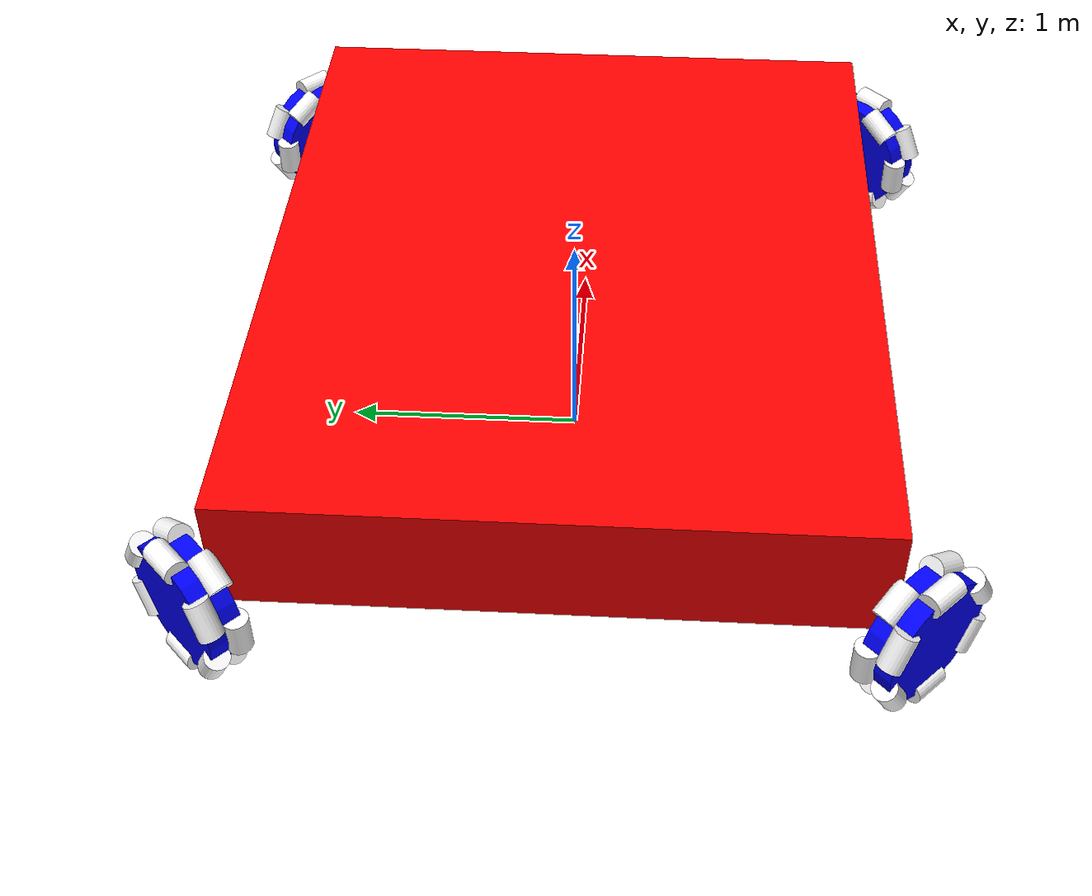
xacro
<?xml version="1.0"?>
<robot name="simple_robot" xmlns:xacro="http://www.ros.org/wiki/xacro">

        <xacro:include filename="$(find car_square)/model/gazebo.xacro"/>

        <xacro:include filename="$(find car_square)/model/wheels/omni_wheel.urdf.xacro"/>

        <link name="base_link">
                <visual>
                        <geometry>
                        <box size="${chassis_length} ${chassis_width} ${chassis_height}"/>
                        </geometry>
                        <origin xyz="0 0 ${chassis_offset}" rpy="0 0 0"/>
                        <material name="red"/>
                </visual>

                <collision>
                        <geometry>
                        <box size="0.3 0.25 0.05"/>
                        </geometry>
                        <origin xyz="0 0 ${chassis_offset}" rpy="0 0 0"/>
                </collision>

                <xacro:chassis_inertia />
        </link>

        <!-- LINKS ET JOINTS DES ROUES -->

        <xacro:omni_wheel
                prefix="lf"
                parent="base_link"
                xyz="${chassis_length/2} ${chassis_width/2 + wheel_width} ${r}"
                rpy="0 0 ${-pi/4}"
        />
        <xacro:omni_wheel
                prefix="rf"
                parent="base_link"
                xyz="${chassis_length/2} ${-(chassis_width/2 + wheel_width)} ${r}"
                rpy="0 0 ${5*pi/4}"
        />
        <xacro:omni_wheel
                prefix="lb"
                parent="base_link"
                xyz="${-(chassis_length/2)} ${chassis_width/2 + wheel_width} ${r}"
                rpy="0 0 ${pi/4}"
        />
        <xacro:omni_wheel
                prefix="rb"
                parent="base_link"
                xyz="${-(chassis_length/2)} ${-(chassis_width/2 + wheel_width)} ${r}"
                rpy="0 0 ${-5*pi/4}"
        />

        <!-- ROS2_CONTROL -->

        <ros2_control name="RobotController" type="system">
                <hardware>
                        <plugin>gz_ros2_control/GazeboSimSystem</plugin>
                </hardware>

                <joint name="lf_joint">
                        <command_interface name="velocity"/>
                        <state_interface name="position"/>
                        <state_interface name="velocity"/>
                        <state_interface name="effort"/>
                </joint>

                <joint name="rf_joint">
                        <command_interface name="velocity"/>
                        <state_interface name="position"/>
                        <state_interface name="velocity"/>
                        <state_interface name="effort"/>
                </joint>

                <joint name="lb_joint">
                        <command_interface name="velocity"/>
                        <state_interface name="position"/>
                        <state_interface name="velocity"/>
                        <state_interface name="effort"/>
                </joint>

                <joint name="rb_joint">
                        <command_interface name="velocity"/>
                        <state_interface name="position"/>
                        <state_interface name="velocity"/>
                        <state_interface name="effort"/>
                </joint>

        </ros2_control>

</robot>

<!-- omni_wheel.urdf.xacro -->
<robot xmlns:xacro="http://www.ros.org/wiki/xacro">

  <xacro:include filename="$(find ros2_control_car)/model/parameters.xacro"/>
  <!-- ========== MACRO ROLLER ========== -->
  <xacro:macro name="roller" params="prefix parent idx angle1 angle2 wheel_radius wheel_width roller_radius roller_length">

    <link name="${prefix}_roller_${idx}">
      <inertial>
        <origin xyz="0 0 0"/>
        <mass value="0.02"/>
        <inertia
          ixx="0.00001" iyy="0.00001" izz="0.00001"
          ixy="0" ixz="0" iyz="0"/>
      </inertial>

      <collision>
        <origin rpy="1.5708 0 0"/>
        <geometry>
          <cylinder radius="${roller_radius}" length="${roller_length}"/>
        </geometry>
      </collision>

      <visual>
        <origin rpy="1.5708 0 0"/>
        <geometry>
          <cylinder radius="${roller_radius}" length="${roller_length}"/>
        </geometry>
        <material name="white" />
      </visual>
    </link>

    <link name="${prefix}_roller_neighbor_${idx}">
      <inertial>
        <origin xyz="0 0 0"/>
        <mass value="0.02"/>
        <inertia
          ixx="0.00001" iyy="0.00001" izz="0.00001"
          ixy="0" ixz="0" iyz="0"/>
      </inertial>

      <collision>
        <origin rpy="1.5708 0 0"/>
        <geometry>
          <cylinder radius="${roller_radius}" length="${roller_length}"/>
        </geometry>
      </collision>

      <visual>
        <origin rpy="1.5708 0 0"/>
        <geometry>
          <cylinder radius="${roller_radius}" length="${roller_length}"/>
        </geometry>
        <material name="white" />
      </visual>
    </link>

    <joint name="${prefix}_roller_${idx}_joint" type="continuous">
      <parent link="${parent}"/>
      <child link="${prefix}_roller_${idx}"/>
      <origin
        xyz="${(wheel_radius - roller_radius) * cos(angle1)} ${-wheel_width/2} ${(wheel_radius - roller_radius) * sin(angle1)}"
        rpy="${3*pi/2 - angle1} 0 1.5708"/>
      <axis xyz="0 1 0"/>
    </joint>

    <joint name="${prefix}_roller_neighbor_${idx}_joint" type="continuous">
      <parent link="${parent}"/>
      <child link="${prefix}_roller_neighbor_${idx}"/>
      <origin
        xyz="${(wheel_radius - roller_radius) * cos(angle2)} ${2*roller_radius - wheel_width/2} ${(wheel_radius - roller_radius) * sin(angle2)}"
        rpy="${3*pi/2 - angle2} 0 1.5708"/>
      <axis xyz="0 1 0"/>
    </joint>

  </xacro:macro>

  <!-- ========== RÉCURSION ========== -->
  <xacro:macro name="roller_loop"
               params="prefix parent idx count wheel_radius wheel_width roller_radius roller_length">

    <xacro:if value="${idx &lt; count}">
      <xacro:property name="angle1"
                      value="${2 * pi * idx / count}"/>
      <xacro:property name="angle2"
                      value="${2 * pi * idx / count + pi / count}" />

      <xacro:roller
        prefix="${prefix}"
        parent="${parent}"
        idx="${idx}"
        angle1="${angle1}"
        angle2="${angle2}"
        wheel_radius="${wheel_radius}"
        wheel_width="${wheel_width}"
        roller_radius="${roller_radius}"
        roller_length="${roller_length}"/>

      <!-- appel récursif -->
      <xacro:roller_loop
        prefix="${prefix}"
        parent="${parent}"
        idx="${idx + 1}"
        count="${count}"
        wheel_radius="${wheel_radius}"
        wheel_width="${wheel_width}"
        roller_radius="${roller_radius}"
        roller_length="${roller_length}"/>
    </xacro:if>

  </xacro:macro>

  <!-- ========== OMNI WHEEL COMPLETE ========== -->
  <xacro:macro name="omni_wheel"
               params="prefix parent xyz rpy">

    <!-- moyeu -->
    <link name="${prefix}_hub">
      <inertial>
        <origin xyz="0 0 0"/>
        <mass value="0.5"/>
        <inertia
          ixx="0.001" iyy="0.001" izz="0.001"
          ixy="0.0" ixz="0.0" iyz="0.0"/>
      </inertial>

      <visual>
        <geometry>
          <cylinder radius="${7*wheel_radius/8}" length="${3*wheel_width/2}"/>
        </geometry>
        <material name="blue"/>
        <origin rpy="1.5708 0 0"/>
      </visual>

      <collision>
        <geometry>
          <cylinder radius="${7*wheel_radius/8}" length="${3*wheel_width/2}"/>
        </geometry>
        <material name="blue"/>
        <origin rpy="1.5708 0 0"/>
      </collision>
    </link>

    <joint name="${prefix}_joint" type="continuous">
      <parent link="${parent}"/>
      <child link="${prefix}_hub"/>
      <origin xyz="${xyz}" rpy="${rpy}"/>
      <axis xyz="0 1 0"/>
    </joint>

    <!-- génération des rollers -->
    <xacro:roller_loop
      prefix="${prefix}"
      parent="${prefix}_hub"
      idx="0"
      count="${roller_count}"
      wheel_radius="${wheel_radius}"
      wheel_width="${wheel_width}"
      roller_radius="${roller_radius}"
      roller_length="${roller_length}"/>

  </xacro:macro>

</robot>

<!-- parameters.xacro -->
<robot xmlns:xacro="http://www.ros.org/wiki/xacro">

<xacro:property name="SCALE_FACTOR" value="5" />

<xacro:property name="chassis_length" value="${0.6*SCALE_FACTOR}" />
<xacro:property name="chassis_width" value="${0.5*SCALE_FACTOR}" />
<xacro:property name="chassis_height" value="${0.1*SCALE_FACTOR}" />
<xacro:property name="chassis_offset" value="${0.15*SCALE_FACTOR}" />

<xacro:property name="chassis_density" value="271.0"/>
<xacro:property name="chassis_mass" value="${chassis_density * (chassis_length * chassis_width * chassis_height)}"/>

<xacro:property name="Ix_chassis" value="${(1/12)*chassis_mass*(chassis_width*chassis_width+chassis_height*chassis_height)}" />
<xacro:property name="Iy_chassis" value="${(1/12)*chassis_mass*(chassis_length*chassis_length+chassis_width*chassis_width)}" />
<xacro:property name="Iz_chassis" value="${(1/12)*chassis_mass*(chassis_length*chassis_length+chassis_height*chassis_height)}" />

<xacro:macro name="chassis_inertia">
        <inertial>
                <origin xyz="0 0 ${chassis_offset}" rpy="0 0 0"/>
                <mass value="${chassis_mass}"/>
                <inertia ixx="${Ix_chassis}" ixy="0.0" ixz="0.0" iyy="${Iy_chassis}" iyz="0" izz="${Iz_chassis}" />
        </inertial>
</xacro:macro>

<xacro:property name="r" value="${0.1*SCALE_FACTOR}" />
<xacro:property name="wheel_radius" value="${0.06*SCALE_FACTOR}"/>
<xacro:property name="wheel_width" value="${0.02*SCALE_FACTOR}"/>

<xacro:property name="roller_radius" value="${0.01*SCALE_FACTOR}"/>
<xacro:property name="roller_length" value="${0.03*SCALE_FACTOR}"/>
<xacro:property name="roller_count" value="6"/>

<xacro:property name="arm_length" value="${0.05*SCALE_FACTOR}" />
<xacro:property name="arm_width" value="${0.05*SCALE_FACTOR}" />
<xacro:property name="arm_height" value="${0.3*SCALE_FACTOR}" />

<xacro:property name="arm_density" value="271.0"/>
<xacro:property name="arm_mass" value="${arm_density * (arm_length * arm_width * arm_height)}"/>

<xacro:property name="Ix_body" value="${(1/12)*arm_mass*(arm_width*arm_width+arm_height*arm_height)}" />
<xacro:property name="Iy_body" value="${(1/12)*arm_mass*(arm_length*arm_length+arm_width*arm_width)}" />
<xacro:property name="Iz_body" value="${(1/12)*arm_mass*(arm_length*arm_length+arm_height*arm_height)}" />

<xacro:macro name="arm_inertia">
        <inertial>
        <origin rpy="0 0 0" xyz="0 0 ${arm_height/2}"/>
        <mass value="${arm_mass}"/>
        <inertia ixx="${Ix_body}" ixy="0.0" ixz="0.0" iyy="${Iy_body}" iyz="0" izz="${Iz_body}" />
        </inertial>
</xacro:macro>

<xacro:property name="little_Ix_body" value="${(1/12)*m*(arm_width*arm_width+(arm_height/2)*(arm_height/2))}" />
<xacro:property name="little_Iy_body" value="${(1/12)*m*(arm_length*arm_length+arm_width*arm_width)}" />
<xacro:property name="little_Iz_body" value="${(1/12)*m*(arm_length*arm_length+(arm_height/2)*(arm_height/2))}" />
<xacro:macro name="little_arm_inertia">
        <inertial>
        <origin rpy="0 0 0" xyz="0 0 ${arm_height/4}"/>
        <mass value="${arm_mass/2}"/>
        <inertia ixx="${Ix_body}" ixy="0.0" ixz="0.0" iyy="${Iy_body}" iyz="0" izz="${Iz_body}" />
        </inertial>
</xacro:macro>

<xacro:property name="pliers_length" value="${0.05*SCALE_FACTOR}" />
<xacro:property name="pliers_width" value="${0.05*SCALE_FACTOR}" />
<xacro:property name="pliers_height" value="${arm_height/2}" />

<xacro:property name="pliers_density" value="271.0"/>
<xacro:property name="pliers_mass" value="${pliers_density * (pliers_length * pliers_width * pliers_height)}"/>

<xacro:property name="Ix_pliers" value="${(1/12) * pliers_mass * (pliers_width*pliers_width + pliers_height*pliers_height)}" />
<xacro:property name="Iy_pliers" value="${(1/12) * pliers_mass * (pliers_length*pliers_length + pliers_width*pliers_width)}" />
<xacro:property name="Iz_pliers" value="${(1/12) * pliers_mass * (pliers_length*pliers_length + pliers_height*pliers_height)}" />

<xacro:macro name="pliers_inertia">
        <inertial>
        <origin rpy="0 0 0" xyz="0 0 ${pliers_height/2}"/>
        <mass value="${pliers_mass}"/>
        <inertia ixx="${Ix_pliers}" ixy="0.0" ixz="0.0" iyy="${Iy_pliers}" iyz="0" izz="${Iz_pliers}" />
        </inertial>
</xacro:macro>

<xacro:property name="mini_pliers_length" value="${0.025*SCALE_FACTOR}" />
<xacro:property name="mini_pliers_width" value="${0.1*SCALE_FACTOR}" />
<xacro:property name="mini_pliers_height" value="${arm_height/2}" />

<xacro:property name="mini_pliers_density" value="271.0"/>
<xacro:property name="mini_pliers_mass" value="${mini_pliers_density * (mini_pliers_length * mini_pliers_width * mini_pliers_height)}"/>

<xacro:property name="Ix_mini_pliers" value="${(1/12) * mini_pliers_mass * (mini_pliers_width*mini_pliers_width + mini_pliers_height*mini_pliers_height)}" />
<xacro:property name="Iy_mini_pliers" value="${(1/12) * mini_pliers_mass * (mini_pliers_length*mini_pliers_length + mini_pliers_width*mini_pliers_width)}" />
<xacro:property name="Iz_mini_pliers" value="${(1/12) * mini_pliers_mass * (mini_pliers_length*mini_pliers_length + mini_pliers_height*mini_pliers_height)}" />

<xacro:macro name="mini_pliers_inertia">
        <inertial>
        <origin rpy="0 0 0" xyz="0 0 ${mini_pliers_height/2}"/>
        <mass value="${pliers_mass}"/>
        <inertia ixx="${Ix_mini_pliers}" ixy="0.0" ixz="0.0" iyy="${Iy_mini_pliers}" iyz="0" izz="${Iz_mini_pliers}" />
        </inertial>
</xacro:macro>

<xacro:property name="lidar_radius" value="${0.05*SCALE_FACTOR}"/>
<xacro:property name="lidar_length" value="${0.05*SCALE_FACTOR}"/>

<xacro:macro name="lidar_inertia">
        <inertial>
                <mass value="1e-6"/>
                <origin xyz="0 0 0" rpy="0 0 0" />
                <inertia ixx="1e-6" ixy="0" ixz="0" iyy="1e-6" iyz="0" izz="1e-6" />
        </inertial>
</xacro:macro>

<material name="blue">
        <color rgba="0 0 1 1"/>
</material>

<material name="red">
        <color rgba="1 0 0 1"/>
</material>

<material name="green">
        <color rgba="0 1 0 1"/>
</material>

<material name="yellow">
        <color rgba="1 1 0 1"/>
</material>

<material name="magenta">
        <color rgba="1 0 1 1" />
</material>

<material name="cyan">
        <color rgba="0 1 1 1" />
</material>

<material name="white">
        <color rgba="1 1 1 1" />
</material>

</robot>
